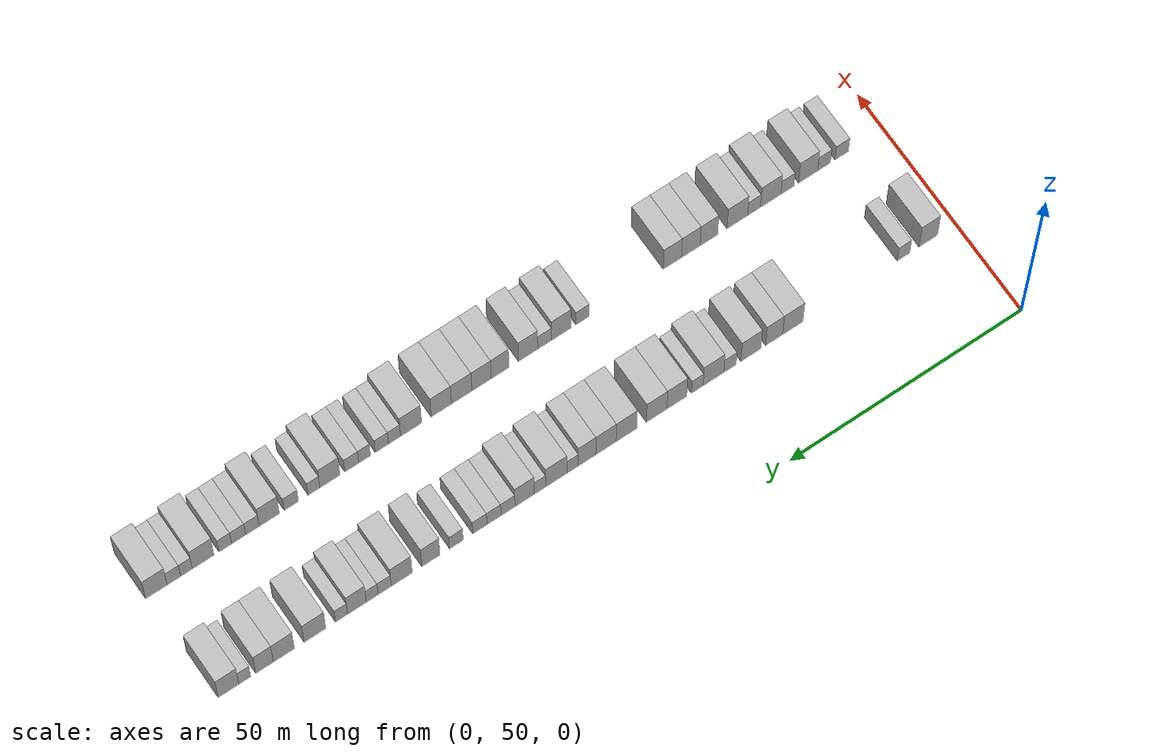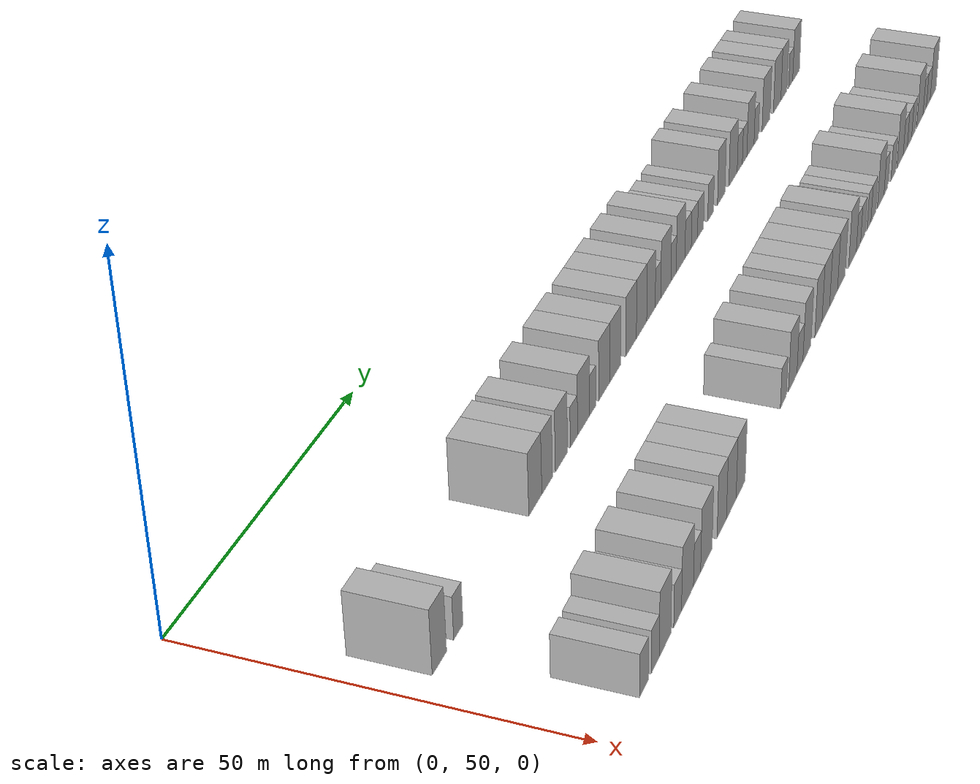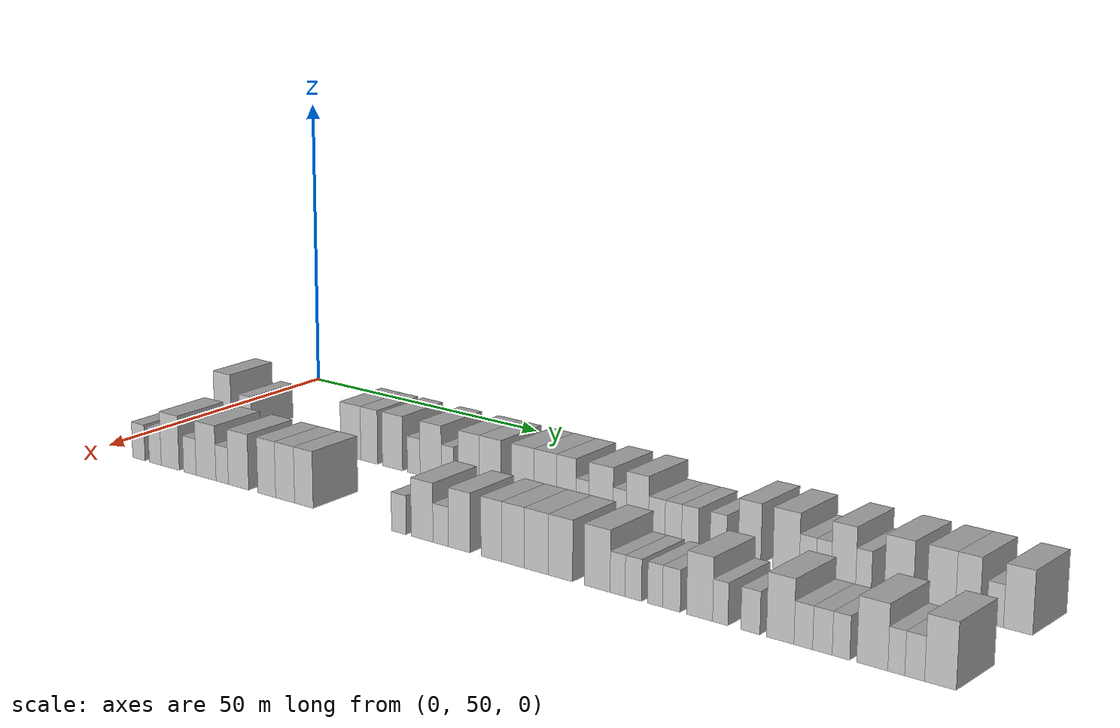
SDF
<sdf version="1.6">
 <world name="default">
  <model name="building_69">
   <static>1</static>
   <pose>25.0000 55.9958 0 0.000000 0.000000 0.000000</pose>
   <link name="link">
    <pose>0 0 4.50 0 0 0</pose>
    <collision name="collision"><geometry><box><size>10.0000 4.0363 9.0000</size></box></geometry></collision>
    <visual name="visual">
     <cast_shadows>0</cast_shadows>
     <geometry><box><size>10.0000 4.0363 9.0000</size></box></geometry>
     <material>
      <script>
       <uri>model://HANNAS_wall/materials/scripts</uri>
       <uri>model://HANNAS_wall/materials/textures</uri>
       <name>vrc/HANNAS_wall</name>
      </script>
     </material>
    </visual>
   </link>
  </model>
  <model name="building_70">
   <static>1</static>
   <pose>25.0000 61.3768 0 0.000000 0.000000 0.000000</pose>
   <link name="link">
    <pose>0 0 3.00 0 0 0</pose>
    <collision name="collision"><geometry><box><size>10.0000 2.7257 6.0000</size></box></geometry></collision>
    <visual name="visual">
     <cast_shadows>0</cast_shadows>
     <geometry><box><size>10.0000 2.7257 6.0000</size></box></geometry>
     <material>
      <script>
       <uri>model://HANNAS_wall/materials/scripts</uri>
       <uri>model://HANNAS_wall/materials/textures</uri>
       <name>vrc/HANNAS_wall</name>
      </script>
     </material>
    </visual>
   </link>
  </model>
  <model name="building_71">
   <static>1</static>
   <pose>25.0000 85.3291 0 0.000000 0.000000 0.000000</pose>
   <link name="link">
    <pose>0 0 4.50 0 0 0</pose>
    <collision name="collision"><geometry><box><size>10.0000 4.3930 9.0000</size></box></geometry></collision>
    <visual name="visual">
     <cast_shadows>0</cast_shadows>
     <geometry><box><size>10.0000 4.3930 9.0000</size></box></geometry>
     <material>
      <script>
       <uri>model://HANNAS_wall/materials/scripts</uri>
       <uri>model://HANNAS_wall/materials/textures</uri>
       <name>vrc/HANNAS_wall</name>
      </script>
     </material>
    </visual>
   </link>
  </model>
  <model name="building_72">
   <static>1</static>
   <pose>25.0000 89.3471 0 0.000000 0.000000 0.000000</pose>
   <link name="link">
    <pose>0 0 4.50 0 0 0</pose>
    <collision name="collision"><geometry><box><size>10.0000 3.6430 9.0000</size></box></geometry></collision>
    <visual name="visual">
     <cast_shadows>0</cast_shadows>
     <geometry><box><size>10.0000 3.6430 9.0000</size></box></geometry>
     <material>
      <script>
       <uri>model://HANNAS_wall/materials/scripts</uri>
       <uri>model://HANNAS_wall/materials/textures</uri>
       <name>vrc/HANNAS_wall</name>
      </script>
     </material>
    </visual>
   </link>
  </model>
  <model name="building_73">
   <static>1</static>
   <pose>25.0000 94.3187 0 0.000000 0.000000 0.000000</pose>
   <link name="link">
    <pose>0 0 4.50 0 0 0</pose>
    <collision name="collision"><geometry><box><size>10.0000 4.3004 9.0000</size></box></geometry></collision>
    <visual name="visual">
     <cast_shadows>0</cast_shadows>
     <geometry><box><size>10.0000 4.3004 9.0000</size></box></geometry>
     <material>
      <script>
       <uri>model://HANNAS_wall/materials/scripts</uri>
       <uri>model://HANNAS_wall/materials/textures</uri>
       <name>vrc/HANNAS_wall</name>
      </script>
     </material>
    </visual>
   </link>
  </model>
  <model name="building_74">
   <static>1</static>
   <pose>25.0000 98.8005 0 0.000000 0.000000 0.000000</pose>
   <link name="link">
    <pose>0 0 3.00 0 0 0</pose>
    <collision name="collision"><geometry><box><size>10.0000 2.6633 6.0000</size></box></geometry></collision>
    <visual name="visual">
     <cast_shadows>0</cast_shadows>
     <geometry><box><size>10.0000 2.6633 6.0000</size></box></geometry>
     <material>
      <script>
       <uri>model://HANNAS_wall/materials/scripts</uri>
       <uri>model://HANNAS_wall/materials/textures</uri>
       <name>vrc/HANNAS_wall</name>
      </script>
     </material>
    </visual>
   </link>
  </model>
  <model name="building_75">
   <static>1</static>
   <pose>25.0000 102.3414 0 0.000000 0.000000 0.000000</pose>
   <link name="link">
    <pose>0 0 4.50 0 0 0</pose>
    <collision name="collision"><geometry><box><size>10.0000 4.4184 9.0000</size></box></geometry></collision>
    <visual name="visual">
     <cast_shadows>0</cast_shadows>
     <geometry><box><size>10.0000 4.4184 9.0000</size></box></geometry>
     <material>
      <script>
       <uri>model://HANNAS_wall/materials/scripts</uri>
       <uri>model://HANNAS_wall/materials/textures</uri>
       <name>vrc/HANNAS_wall</name>
      </script>
     </material>
    </visual>
   </link>
  </model>
  <model name="building_76">
   <static>1</static>
   <pose>25.0000 105.7823 0 0.000000 0.000000 0.000000</pose>
   <link name="link">
    <pose>0 0 3.00 0 0 0</pose>
    <collision name="collision"><geometry><box><size>10.0000 2.4634 6.0000</size></box></geometry></collision>
    <visual name="visual">
     <cast_shadows>0</cast_shadows>
     <geometry><box><size>10.0000 2.4634 6.0000</size></box></geometry>
     <material>
      <script>
       <uri>model://HANNAS_wall/materials/scripts</uri>
       <uri>model://HANNAS_wall/materials/textures</uri>
       <name>vrc/HANNAS_wall</name>
      </script>
     </material>
    </visual>
   </link>
  </model>
  <model name="building_77">
   <static>1</static>
   <pose>25.0000 110.1283 0 0.000000 0.000000 0.000000</pose>
   <link name="link">
    <pose>0 0 4.50 0 0 0</pose>
    <collision name="collision"><geometry><box><size>10.0000 4.2287 9.0000</size></box></geometry></collision>
    <visual name="visual">
     <cast_shadows>0</cast_shadows>
     <geometry><box><size>10.0000 4.2287 9.0000</size></box></geometry>
     <material>
      <script>
       <uri>model://HANNAS_wall/materials/scripts</uri>
       <uri>model://HANNAS_wall/materials/textures</uri>
       <name>vrc/HANNAS_wall</name>
      </script>
     </material>
    </visual>
   </link>
  </model>
  <model name="building_78">
   <static>1</static>
   <pose>25.0000 114.4255 0 0.000000 0.000000 0.000000</pose>
   <link name="link">
    <pose>0 0 4.50 0 0 0</pose>
    <collision name="collision"><geometry><box><size>10.0000 4.3657 9.0000</size></box></geometry></collision>
    <visual name="visual">
     <cast_shadows>0</cast_shadows>
     <geometry><box><size>10.0000 4.3657 9.0000</size></box></geometry>
     <material>
      <script>
       <uri>model://HANNAS_wall/materials/scripts</uri>
       <uri>model://HANNAS_wall/materials/textures</uri>
       <name>vrc/HANNAS_wall</name>
      </script>
     </material>
    </visual>
   </link>
  </model>
  <model name="building_79">
   <static>1</static>
   <pose>25.0000 120.8069 0 0.000000 0.000000 0.000000</pose>
   <link name="link">
    <pose>0 0 4.50 0 0 0</pose>
    <collision name="collision"><geometry><box><size>10.0000 4.3971 9.0000</size></box></geometry></collision>
    <visual name="visual">
     <cast_shadows>0</cast_shadows>
     <geometry><box><size>10.0000 4.3971 9.0000</size></box></geometry>
     <material>
      <script>
       <uri>model://HANNAS_wall/materials/scripts</uri>
       <uri>model://HANNAS_wall/materials/textures</uri>
       <name>vrc/HANNAS_wall</name>
      </script>
     </material>
    </visual>
   </link>
  </model>
  <model name="building_80">
   <static>1</static>
   <pose>25.0000 125.1614 0 0.000000 0.000000 0.000000</pose>
   <link name="link">
    <pose>0 0 4.50 0 0 0</pose>
    <collision name="collision"><geometry><box><size>10.0000 4.3120 9.0000</size></box></geometry></collision>
    <visual name="visual">
     <cast_shadows>0</cast_shadows>
     <geometry><box><size>10.0000 4.3120 9.0000</size></box></geometry>
     <material>
      <script>
       <uri>model://HANNAS_wall/materials/scripts</uri>
       <uri>model://HANNAS_wall/materials/textures</uri>
       <name>vrc/HANNAS_wall</name>
      </script>
     </material>
    </visual>
   </link>
  </model>
  <model name="building_81">
   <static>1</static>
   <pose>25.0000 129.1524 0 0.000000 0.000000 0.000000</pose>
   <link name="link">
    <pose>0 0 4.50 0 0 0</pose>
    <collision name="collision"><geometry><box><size>10.0000 3.6699 9.0000</size></box></geometry></collision>
    <visual name="visual">
     <cast_shadows>0</cast_shadows>
     <geometry><box><size>10.0000 3.6699 9.0000</size></box></geometry>
     <material>
      <script>
       <uri>model://HANNAS_wall/materials/scripts</uri>
       <uri>model://HANNAS_wall/materials/textures</uri>
       <name>vrc/HANNAS_wall</name>
      </script>
     </material>
    </visual>
   </link>
  </model>
  <model name="building_82">
   <static>1</static>
   <pose>25.0000 132.1975 0 0.000000 0.000000 0.000000</pose>
   <link name="link">
    <pose>0 0 3.00 0 0 0</pose>
    <collision name="collision"><geometry><box><size>10.0000 2.4202 6.0000</size></box></geometry></collision>
    <visual name="visual">
     <cast_shadows>0</cast_shadows>
     <geometry><box><size>10.0000 2.4202 6.0000</size></box></geometry>
     <material>
      <script>
       <uri>model://HANNAS_wall/materials/scripts</uri>
       <uri>model://HANNAS_wall/materials/textures</uri>
       <name>vrc/HANNAS_wall</name>
      </script>
     </material>
    </visual>
   </link>
  </model>
  <model name="building_83">
   <static>1</static>
   <pose>25.0000 135.6443 0 0.000000 0.000000 0.000000</pose>
   <link name="link">
    <pose>0 0 4.50 0 0 0</pose>
    <collision name="collision"><geometry><box><size>10.0000 4.4733 9.0000</size></box></geometry></collision>
    <visual name="visual">
     <cast_shadows>0</cast_shadows>
     <geometry><box><size>10.0000 4.4733 9.0000</size></box></geometry>
     <material>
      <script>
       <uri>model://HANNAS_wall/materials/scripts</uri>
       <uri>model://HANNAS_wall/materials/textures</uri>
       <name>vrc/HANNAS_wall</name>
      </script>
     </material>
    </visual>
   </link>
  </model>
  <model name="building_84">
   <static>1</static>
   <pose>25.0000 139.0898 0 0.000000 0.000000 0.000000</pose>
   <link name="link">
    <pose>0 0 3.00 0 0 0</pose>
    <collision name="collision"><geometry><box><size>10.0000 2.4178 6.0000</size></box></geometry></collision>
    <visual name="visual">
     <cast_shadows>0</cast_shadows>
     <geometry><box><size>10.0000 2.4178 6.0000</size></box></geometry>
     <material>
      <script>
       <uri>model://HANNAS_wall/materials/scripts</uri>
       <uri>model://HANNAS_wall/materials/textures</uri>
       <name>vrc/HANNAS_wall</name>
      </script>
     </material>
    </visual>
   </link>
  </model>
  <model name="building_85">
   <static>1</static>
   <pose>25.0000 142.3028 0 0.000000 0.000000 0.000000</pose>
   <link name="link">
    <pose>0 0 4.50 0 0 0</pose>
    <collision name="collision"><geometry><box><size>10.0000 4.0082 9.0000</size></box></geometry></collision>
    <visual name="visual">
     <cast_shadows>0</cast_shadows>
     <geometry><box><size>10.0000 4.0082 9.0000</size></box></geometry>
     <material>
      <script>
       <uri>model://HANNAS_wall/materials/scripts</uri>
       <uri>model://HANNAS_wall/materials/textures</uri>
       <name>vrc/HANNAS_wall</name>
      </script>
     </material>
    </visual>
   </link>
  </model>
  <model name="building_86">
   <static>1</static>
   <pose>25.0000 145.7734 0 0.000000 0.000000 0.000000</pose>
   <link name="link">
    <pose>0 0 3.00 0 0 0</pose>
    <collision name="collision"><geometry><box><size>10.0000 2.9331 6.0000</size></box></geometry></collision>
    <visual name="visual">
     <cast_shadows>0</cast_shadows>
     <geometry><box><size>10.0000 2.9331 6.0000</size></box></geometry>
     <material>
      <script>
       <uri>model://HANNAS_wall/materials/scripts</uri>
       <uri>model://HANNAS_wall/materials/textures</uri>
       <name>vrc/HANNAS_wall</name>
      </script>
     </material>
    </visual>
   </link>
  </model>
  <model name="building_87">
   <static>1</static>
   <pose>25.0000 148.7163 0 0.000000 0.000000 0.000000</pose>
   <link name="link">
    <pose>0 0 3.00 0 0 0</pose>
    <collision name="collision"><geometry><box><size>10.0000 2.9528 6.0000</size></box></geometry></collision>
    <visual name="visual">
     <cast_shadows>0</cast_shadows>
     <geometry><box><size>10.0000 2.9528 6.0000</size></box></geometry>
     <material>
      <script>
       <uri>model://HANNAS_wall/materials/scripts</uri>
       <uri>model://HANNAS_wall/materials/textures</uri>
       <name>vrc/HANNAS_wall</name>
      </script>
     </material>
    </visual>
   </link>
  </model>
  <model name="building_88">
   <static>1</static>
   <pose>25.0000 151.6669 0 0.000000 0.000000 0.000000</pose>
   <link name="link">
    <pose>0 0 3.00 0 0 0</pose>
    <collision name="collision"><geometry><box><size>10.0000 2.9483 6.0000</size></box></geometry></collision>
    <visual name="visual">
     <cast_shadows>0</cast_shadows>
     <geometry><box><size>10.0000 2.9483 6.0000</size></box></geometry>
     <material>
      <script>
       <uri>model://HANNAS_wall/materials/scripts</uri>
       <uri>model://HANNAS_wall/materials/textures</uri>
       <name>vrc/HANNAS_wall</name>
      </script>
     </material>
    </visual>
   </link>
  </model>
  <model name="building_89">
   <static>1</static>
   <pose>25.0000 156.5562 0 0.000000 0.000000 0.000000</pose>
   <link name="link">
    <pose>0 0 3.00 0 0 0</pose>
    <collision name="collision"><geometry><box><size>10.0000 2.8304 6.0000</size></box></geometry></collision>
    <visual name="visual">
     <cast_shadows>0</cast_shadows>
     <geometry><box><size>10.0000 2.8304 6.0000</size></box></geometry>
     <material>
      <script>
       <uri>model://HANNAS_wall/materials/scripts</uri>
       <uri>model://HANNAS_wall/materials/textures</uri>
       <name>vrc/HANNAS_wall</name>
      </script>
     </material>
    </visual>
   </link>
  </model>
  <model name="building_90">
   <static>1</static>
   <pose>25.0000 161.8635 0 0.000000 0.000000 0.000000</pose>
   <link name="link">
    <pose>0 0 4.50 0 0 0</pose>
    <collision name="collision"><geometry><box><size>10.0000 3.7841 9.0000</size></box></geometry></collision>
    <visual name="visual">
     <cast_shadows>0</cast_shadows>
     <geometry><box><size>10.0000 3.7841 9.0000</size></box></geometry>
     <material>
      <script>
       <uri>model://HANNAS_wall/materials/scripts</uri>
       <uri>model://HANNAS_wall/materials/textures</uri>
       <name>vrc/HANNAS_wall</name>
      </script>
     </material>
    </visual>
   </link>
  </model>
  <model name="building_91">
   <static>1</static>
   <pose>25.0000 167.9259 0 0.000000 0.000000 0.000000</pose>
   <link name="link">
    <pose>0 0 4.50 0 0 0</pose>
    <collision name="collision"><geometry><box><size>10.0000 4.3407 9.0000</size></box></geometry></collision>
    <visual name="visual">
     <cast_shadows>0</cast_shadows>
     <geometry><box><size>10.0000 4.3407 9.0000</size></box></geometry>
     <material>
      <script>
       <uri>model://HANNAS_wall/materials/scripts</uri>
       <uri>model://HANNAS_wall/materials/textures</uri>
       <name>vrc/HANNAS_wall</name>
      </script>
     </material>
    </visual>
   </link>
  </model>
  <model name="building_92">
   <static>1</static>
   <pose>25.0000 171.4656 0 0.000000 0.000000 0.000000</pose>
   <link name="link">
    <pose>0 0 3.00 0 0 0</pose>
    <collision name="collision"><geometry><box><size>10.0000 2.7387 6.0000</size></box></geometry></collision>
    <visual name="visual">
     <cast_shadows>0</cast_shadows>
     <geometry><box><size>10.0000 2.7387 6.0000</size></box></geometry>
     <material>
      <script>
       <uri>model://HANNAS_wall/materials/scripts</uri>
       <uri>model://HANNAS_wall/materials/textures</uri>
       <name>vrc/HANNAS_wall</name>
      </script>
     </material>
    </visual>
   </link>
  </model>
  <model name="building_93">
   <static>1</static>
   <pose>25.0000 174.0482 0 0.000000 0.000000 0.000000</pose>
   <link name="link">
    <pose>0 0 3.00 0 0 0</pose>
    <collision name="collision"><geometry><box><size>10.0000 2.4267 6.0000</size></box></geometry></collision>
    <visual name="visual">
     <cast_shadows>0</cast_shadows>
     <geometry><box><size>10.0000 2.4267 6.0000</size></box></geometry>
     <material>
      <script>
       <uri>model://HANNAS_wall/materials/scripts</uri>
       <uri>model://HANNAS_wall/materials/textures</uri>
       <name>vrc/HANNAS_wall</name>
      </script>
     </material>
    </visual>
   </link>
  </model>
  <model name="building_94">
   <static>1</static>
   <pose>25.0000 177.2059 0 0.000000 0.000000 0.000000</pose>
   <link name="link">
    <pose>0 0 4.50 0 0 0</pose>
    <collision name="collision"><geometry><box><size>10.0000 3.8887 9.0000</size></box></geometry></collision>
    <visual name="visual">
     <cast_shadows>0</cast_shadows>
     <geometry><box><size>10.0000 3.8887 9.0000</size></box></geometry>
     <material>
      <script>
       <uri>model://HANNAS_wall/materials/scripts</uri>
       <uri>model://HANNAS_wall/materials/textures</uri>
       <name>vrc/HANNAS_wall</name>
      </script>
     </material>
    </visual>
   </link>
  </model>
  <model name="building_95">
   <static>1</static>
   <pose>25.0000 180.3838 0 0.000000 0.000000 0.000000</pose>
   <link name="link">
    <pose>0 0 3.00 0 0 0</pose>
    <collision name="collision"><geometry><box><size>10.0000 2.4671 6.0000</size></box></geometry></collision>
    <visual name="visual">
     <cast_shadows>0</cast_shadows>
     <geometry><box><size>10.0000 2.4671 6.0000</size></box></geometry>
     <material>
      <script>
       <uri>model://HANNAS_wall/materials/scripts</uri>
       <uri>model://HANNAS_wall/materials/textures</uri>
       <name>vrc/HANNAS_wall</name>
      </script>
     </material>
    </visual>
   </link>
  </model>
  <model name="building_96">
   <static>1</static>
   <pose>25.0000 185.8501 0 0.000000 0.000000 0.000000</pose>
   <link name="link">
    <pose>0 0 4.50 0 0 0</pose>
    <collision name="collision"><geometry><box><size>10.0000 4.4653 9.0000</size></box></geometry></collision>
    <visual name="visual">
     <cast_shadows>0</cast_shadows>
     <geometry><box><size>10.0000 4.4653 9.0000</size></box></geometry>
     <material>
      <script>
       <uri>model://HANNAS_wall/materials/scripts</uri>
       <uri>model://HANNAS_wall/materials/textures</uri>
       <name>vrc/HANNAS_wall</name>
      </script>
     </material>
    </visual>
   </link>
  </model>
  <model name="building_97">
   <static>1</static>
   <pose>25.0000 192.2545 0 0.000000 0.000000 0.000000</pose>
   <link name="link">
    <pose>0 0 4.50 0 0 0</pose>
    <collision name="collision"><geometry><box><size>10.0000 4.3436 9.0000</size></box></geometry></collision>
    <visual name="visual">
     <cast_shadows>0</cast_shadows>
     <geometry><box><size>10.0000 4.3436 9.0000</size></box></geometry>
     <material>
      <script>
       <uri>model://HANNAS_wall/materials/scripts</uri>
       <uri>model://HANNAS_wall/materials/textures</uri>
       <name>vrc/HANNAS_wall</name>
      </script>
     </material>
    </visual>
   </link>
  </model>
  <model name="building_98">
   <static>1</static>
   <pose>25.0000 196.2273 0 0.000000 0.000000 0.000000</pose>
   <link name="link">
    <pose>0 0 4.50 0 0 0</pose>
    <collision name="collision"><geometry><box><size>10.0000 3.6019 9.0000</size></box></geometry></collision>
    <visual name="visual">
     <cast_shadows>0</cast_shadows>
     <geometry><box><size>10.0000 3.6019 9.0000</size></box></geometry>
     <material>
      <script>
       <uri>model://HANNAS_wall/materials/scripts</uri>
       <uri>model://HANNAS_wall/materials/textures</uri>
       <name>vrc/HANNAS_wall</name>
      </script>
     </material>
    </visual>
   </link>
  </model>
  <model name="building_99">
   <static>1</static>
   <pose>25.0000 200.2565 0 0.000000 0.000000 0.000000</pose>
   <link name="link">
    <pose>0 0 3.00 0 0 0</pose>
    <collision name="collision"><geometry><box><size>10.0000 2.4564 6.0000</size></box></geometry></collision>
    <visual name="visual">
     <cast_shadows>0</cast_shadows>
     <geometry><box><size>10.0000 2.4564 6.0000</size></box></geometry>
     <material>
      <script>
       <uri>model://HANNAS_wall/materials/scripts</uri>
       <uri>model://HANNAS_wall/materials/textures</uri>
       <name>vrc/HANNAS_wall</name>
      </script>
     </material>
    </visual>
   </link>
  </model>
  <model name="building_100">
   <static>1</static>
   <pose>25.0000 203.5905 0 0.000000 0.000000 0.000000</pose>
   <link name="link">
    <pose>0 0 4.50 0 0 0</pose>
    <collision name="collision"><geometry><box><size>10.0000 4.2116 9.0000</size></box></geometry></collision>
    <visual name="visual">
     <cast_shadows>0</cast_shadows>
     <geometry><box><size>10.0000 4.2116 9.0000</size></box></geometry>
     <material>
      <script>
       <uri>model://HANNAS_wall/materials/scripts</uri>
       <uri>model://HANNAS_wall/materials/textures</uri>
       <name>vrc/HANNAS_wall</name>
      </script>
     </material>
    </visual>
   </link>
  </model>
  <model name="building_165">
   <static>1</static>
   <pose>47.0000 59.1930 0 0.000000 0.000000 0.000000</pose>
   <link name="link">
    <pose>0 0 3.00 0 0 0</pose>
    <collision name="collision"><geometry><box><size>10.0000 2.9124 6.0000</size></box></geometry></collision>
    <visual name="visual">
     <cast_shadows>0</cast_shadows>
     <geometry><box><size>10.0000 2.9124 6.0000</size></box></geometry>
     <material>
      <script>
       <uri>model://HANNAS_wall/materials/scripts</uri>
       <uri>model://HANNAS_wall/materials/textures</uri>
       <name>vrc/HANNAS_wall</name>
      </script>
     </material>
    </visual>
   </link>
  </model>
  <model name="building_166">
   <static>1</static>
   <pose>47.0000 63.0403 0 0.000000 0.000000 0.000000</pose>
   <link name="link">
    <pose>0 0 3.00 0 0 0</pose>
    <collision name="collision"><geometry><box><size>10.0000 2.7821 6.0000</size></box></geometry></collision>
    <visual name="visual">
     <cast_shadows>0</cast_shadows>
     <geometry><box><size>10.0000 2.7821 6.0000</size></box></geometry>
     <material>
      <script>
       <uri>model://HANNAS_wall/materials/scripts</uri>
       <uri>model://HANNAS_wall/materials/textures</uri>
       <name>vrc/HANNAS_wall</name>
      </script>
     </material>
    </visual>
   </link>
  </model>
  <model name="building_167">
   <static>1</static>
   <pose>47.0000 66.5102 0 0.000000 0.000000 0.000000</pose>
   <link name="link">
    <pose>0 0 4.50 0 0 0</pose>
    <collision name="collision"><geometry><box><size>10.0000 4.1576 9.0000</size></box></geometry></collision>
    <visual name="visual">
     <cast_shadows>0</cast_shadows>
     <geometry><box><size>10.0000 4.1576 9.0000</size></box></geometry>
     <material>
      <script>
       <uri>model://HANNAS_wall/materials/scripts</uri>
       <uri>model://HANNAS_wall/materials/textures</uri>
       <name>vrc/HANNAS_wall</name>
      </script>
     </material>
    </visual>
   </link>
  </model>
  <model name="building_168">
   <static>1</static>
   <pose>47.0000 71.0155 0 0.000000 0.000000 0.000000</pose>
   <link name="link">
    <pose>0 0 3.00 0 0 0</pose>
    <collision name="collision"><geometry><box><size>10.0000 2.8531 6.0000</size></box></geometry></collision>
    <visual name="visual">
     <cast_shadows>0</cast_shadows>
     <geometry><box><size>10.0000 2.8531 6.0000</size></box></geometry>
     <material>
      <script>
       <uri>model://HANNAS_wall/materials/scripts</uri>
       <uri>model://HANNAS_wall/materials/textures</uri>
       <name>vrc/HANNAS_wall</name>
      </script>
     </material>
    </visual>
   </link>
  </model>
  <model name="building_169">
   <static>1</static>
   <pose>47.0000 74.6723 0 0.000000 0.000000 0.000000</pose>
   <link name="link">
    <pose>0 0 4.50 0 0 0</pose>
    <collision name="collision"><geometry><box><size>10.0000 4.4606 9.0000</size></box></geometry></collision>
    <visual name="visual">
     <cast_shadows>0</cast_shadows>
     <geometry><box><size>10.0000 4.4606 9.0000</size></box></geometry>
     <material>
      <script>
       <uri>model://HANNAS_wall/materials/scripts</uri>
       <uri>model://HANNAS_wall/materials/textures</uri>
       <name>vrc/HANNAS_wall</name>
      </script>
     </material>
    </visual>
   </link>
  </model>
  <model name="building_170">
   <static>1</static>
   <pose>47.0000 78.2734 0 0.000000 0.000000 0.000000</pose>
   <link name="link">
    <pose>0 0 3.00 0 0 0</pose>
    <collision name="collision"><geometry><box><size>10.0000 2.7416 6.0000</size></box></geometry></collision>
    <visual name="visual">
     <cast_shadows>0</cast_shadows>
     <geometry><box><size>10.0000 2.7416 6.0000</size></box></geometry>
     <material>
      <script>
       <uri>model://HANNAS_wall/materials/scripts</uri>
       <uri>model://HANNAS_wall/materials/textures</uri>
       <name>vrc/HANNAS_wall</name>
      </script>
     </material>
    </visual>
   </link>
  </model>
  <model name="building_171">
   <static>1</static>
   <pose>47.0000 81.8725 0 0.000000 0.000000 0.000000</pose>
   <link name="link">
    <pose>0 0 4.50 0 0 0</pose>
    <collision name="collision"><geometry><box><size>10.0000 4.4566 9.0000</size></box></geometry></collision>
    <visual name="visual">
     <cast_shadows>0</cast_shadows>
     <geometry><box><size>10.0000 4.4566 9.0000</size></box></geometry>
     <material>
      <script>
       <uri>model://HANNAS_wall/materials/scripts</uri>
       <uri>model://HANNAS_wall/materials/textures</uri>
       <name>vrc/HANNAS_wall</name>
      </script>
     </material>
    </visual>
   </link>
  </model>
  <model name="building_172">
   <static>1</static>
   <pose>47.0000 88.0026 0 0.000000 0.000000 0.000000</pose>
   <link name="link">
    <pose>0 0 4.50 0 0 0</pose>
    <collision name="collision"><geometry><box><size>10.0000 3.8037 9.0000</size></box></geometry></collision>
    <visual name="visual">
     <cast_shadows>0</cast_shadows>
     <geometry><box><size>10.0000 3.8037 9.0000</size></box></geometry>
     <material>
      <script>
       <uri>model://HANNAS_wall/materials/scripts</uri>
       <uri>model://HANNAS_wall/materials/textures</uri>
       <name>vrc/HANNAS_wall</name>
      </script>
     </material>
    </visual>
   </link>
  </model>
  <model name="building_173">
   <static>1</static>
   <pose>47.0000 91.9175 0 0.000000 0.000000 0.000000</pose>
   <link name="link">
    <pose>0 0 4.50 0 0 0</pose>
    <collision name="collision"><geometry><box><size>10.0000 4.0261 9.0000</size></box></geometry></collision>
    <visual name="visual">
     <cast_shadows>0</cast_shadows>
     <geometry><box><size>10.0000 4.0261 9.0000</size></box></geometry>
     <material>
      <script>
       <uri>model://HANNAS_wall/materials/scripts</uri>
       <uri>model://HANNAS_wall/materials/textures</uri>
       <name>vrc/HANNAS_wall</name>
      </script>
     </material>
    </visual>
   </link>
  </model>
  <model name="building_174">
   <static>1</static>
   <pose>47.0000 95.8744 0 0.000000 0.000000 0.000000</pose>
   <link name="link">
    <pose>0 0 4.50 0 0 0</pose>
    <collision name="collision"><geometry><box><size>10.0000 3.8877 9.0000</size></box></geometry></collision>
    <visual name="visual">
     <cast_shadows>0</cast_shadows>
     <geometry><box><size>10.0000 3.8877 9.0000</size></box></geometry>
     <material>
      <script>
       <uri>model://HANNAS_wall/materials/scripts</uri>
       <uri>model://HANNAS_wall/materials/textures</uri>
       <name>vrc/HANNAS_wall</name>
      </script>
     </material>
    </visual>
   </link>
  </model>
  <model name="building_175">
   <static>1</static>
   <pose>47.0000 115.0787 0 0.000000 0.000000 0.000000</pose>
   <link name="link">
    <pose>0 0 3.00 0 0 0</pose>
    <collision name="collision"><geometry><box><size>10.0000 2.8403 6.0000</size></box></geometry></collision>
    <visual name="visual">
     <cast_shadows>0</cast_shadows>
     <geometry><box><size>10.0000 2.8403 6.0000</size></box></geometry>
     <material>
      <script>
       <uri>model://HANNAS_wall/materials/scripts</uri>
       <uri>model://HANNAS_wall/materials/textures</uri>
       <name>vrc/HANNAS_wall</name>
      </script>
     </material>
    </visual>
   </link>
  </model>
  <model name="building_176">
   <static>1</static>
   <pose>47.0000 119.5922 0 0.000000 0.000000 0.000000</pose>
   <link name="link">
    <pose>0 0 4.50 0 0 0</pose>
    <collision name="collision"><geometry><box><size>10.0000 4.1866 9.0000</size></box></geometry></collision>
    <visual name="visual">
     <cast_shadows>0</cast_shadows>
     <geometry><box><size>10.0000 4.1866 9.0000</size></box></geometry>
     <material>
      <script>
       <uri>model://HANNAS_wall/materials/scripts</uri>
       <uri>model://HANNAS_wall/materials/textures</uri>
       <name>vrc/HANNAS_wall</name>
      </script>
     </material>
    </visual>
   </link>
  </model>
  <model name="building_177">
   <static>1</static>
   <pose>47.0000 123.1484 0 0.000000 0.000000 0.000000</pose>
   <link name="link">
    <pose>0 0 3.00 0 0 0</pose>
    <collision name="collision"><geometry><box><size>10.0000 2.9258 6.0000</size></box></geometry></collision>
    <visual name="visual">
     <cast_shadows>0</cast_shadows>
     <geometry><box><size>10.0000 2.9258 6.0000</size></box></geometry>
     <material>
      <script>
       <uri>model://HANNAS_wall/materials/scripts</uri>
       <uri>model://HANNAS_wall/materials/textures</uri>
       <name>vrc/HANNAS_wall</name>
      </script>
     </material>
    </visual>
   </link>
  </model>
  <model name="building_178">
   <static>1</static>
   <pose>47.0000 126.6544 0 0.000000 0.000000 0.000000</pose>
   <link name="link">
    <pose>0 0 4.50 0 0 0</pose>
    <collision name="collision"><geometry><box><size>10.0000 4.0863 9.0000</size></box></geometry></collision>
    <visual name="visual">
     <cast_shadows>0</cast_shadows>
     <geometry><box><size>10.0000 4.0863 9.0000</size></box></geometry>
     <material>
      <script>
       <uri>model://HANNAS_wall/materials/scripts</uri>
       <uri>model://HANNAS_wall/materials/textures</uri>
       <name>vrc/HANNAS_wall</name>
      </script>
     </material>
    </visual>
   </link>
  </model>
  <model name="building_179">
   <static>1</static>
   <pose>47.0000 132.5828 0 0.000000 0.000000 0.000000</pose>
   <link name="link">
    <pose>0 0 4.50 0 0 0</pose>
    <collision name="collision"><geometry><box><size>10.0000 3.7704 9.0000</size></box></geometry></collision>
    <visual name="visual">
     <cast_shadows>0</cast_shadows>
     <geometry><box><size>10.0000 3.7704 9.0000</size></box></geometry>
     <material>
      <script>
       <uri>model://HANNAS_wall/materials/scripts</uri>
       <uri>model://HANNAS_wall/materials/textures</uri>
       <name>vrc/HANNAS_wall</name>
      </script>
     </material>
    </visual>
   </link>
  </model>
  <model name="building_180">
   <static>1</static>
   <pose>47.0000 136.5095 0 0.000000 0.000000 0.000000</pose>
   <link name="link">
    <pose>0 0 4.50 0 0 0</pose>
    <collision name="collision"><geometry><box><size>10.0000 4.0828 9.0000</size></box></geometry></collision>
    <visual name="visual">
     <cast_shadows>0</cast_shadows>
     <geometry><box><size>10.0000 4.0828 9.0000</size></box></geometry>
     <material>
      <script>
       <uri>model://HANNAS_wall/materials/scripts</uri>
       <uri>model://HANNAS_wall/materials/textures</uri>
       <name>vrc/HANNAS_wall</name>
      </script>
     </material>
    </visual>
   </link>
  </model>
  <model name="building_181">
   <static>1</static>
   <pose>47.0000 140.7055 0 0.000000 0.000000 0.000000</pose>
   <link name="link">
    <pose>0 0 4.50 0 0 0</pose>
    <collision name="collision"><geometry><box><size>10.0000 4.3093 9.0000</size></box></geometry></collision>
    <visual name="visual">
     <cast_shadows>0</cast_shadows>
     <geometry><box><size>10.0000 4.3093 9.0000</size></box></geometry>
     <material>
      <script>
       <uri>model://HANNAS_wall/materials/scripts</uri>
       <uri>model://HANNAS_wall/materials/textures</uri>
       <name>vrc/HANNAS_wall</name>
      </script>
     </material>
    </visual>
   </link>
  </model>
  <model name="building_182">
   <static>1</static>
   <pose>47.0000 144.9863 0 0.000000 0.000000 0.000000</pose>
   <link name="link">
    <pose>0 0 4.50 0 0 0</pose>
    <collision name="collision"><geometry><box><size>10.0000 4.2523 9.0000</size></box></geometry></collision>
    <visual name="visual">
     <cast_shadows>0</cast_shadows>
     <geometry><box><size>10.0000 4.2523 9.0000</size></box></geometry>
     <material>
      <script>
       <uri>model://HANNAS_wall/materials/scripts</uri>
       <uri>model://HANNAS_wall/materials/textures</uri>
       <name>vrc/HANNAS_wall</name>
      </script>
     </material>
    </visual>
   </link>
  </model>
  <model name="building_183">
   <static>1</static>
   <pose>47.0000 151.3306 0 0.000000 0.000000 0.000000</pose>
   <link name="link">
    <pose>0 0 4.50 0 0 0</pose>
    <collision name="collision"><geometry><box><size>10.0000 4.4363 9.0000</size></box></geometry></collision>
    <visual name="visual">
     <cast_shadows>0</cast_shadows>
     <geometry><box><size>10.0000 4.4363 9.0000</size></box></geometry>
     <material>
      <script>
       <uri>model://HANNAS_wall/materials/scripts</uri>
       <uri>model://HANNAS_wall/materials/textures</uri>
       <name>vrc/HANNAS_wall</name>
      </script>
     </material>
    </visual>
   </link>
  </model>
  <model name="building_184">
   <static>1</static>
   <pose>47.0000 154.8137 0 0.000000 0.000000 0.000000</pose>
   <link name="link">
    <pose>0 0 3.00 0 0 0</pose>
    <collision name="collision"><geometry><box><size>10.0000 2.5299 6.0000</size></box></geometry></collision>
    <visual name="visual">
     <cast_shadows>0</cast_shadows>
     <geometry><box><size>10.0000 2.5299 6.0000</size></box></geometry>
     <material>
      <script>
       <uri>model://HANNAS_wall/materials/scripts</uri>
       <uri>model://HANNAS_wall/materials/textures</uri>
       <name>vrc/HANNAS_wall</name>
      </script>
     </material>
    </visual>
   </link>
  </model>
  <model name="building_185">
   <static>1</static>
   <pose>47.0000 157.4552 0 0.000000 0.000000 0.000000</pose>
   <link name="link">
    <pose>0 0 3.00 0 0 0</pose>
    <collision name="collision"><geometry><box><size>10.0000 2.7531 6.0000</size></box></geometry></collision>
    <visual name="visual">
     <cast_shadows>0</cast_shadows>
     <geometry><box><size>10.0000 2.7531 6.0000</size></box></geometry>
     <material>
      <script>
       <uri>model://HANNAS_wall/materials/scripts</uri>
       <uri>model://HANNAS_wall/materials/textures</uri>
       <name>vrc/HANNAS_wall</name>
      </script>
     </material>
    </visual>
   </link>
  </model>
  <model name="building_186">
   <static>1</static>
   <pose>47.0000 161.0598 0 0.000000 0.000000 0.000000</pose>
   <link name="link">
    <pose>0 0 3.00 0 0 0</pose>
    <collision name="collision"><geometry><box><size>10.0000 2.4561 6.0000</size></box></geometry></collision>
    <visual name="visual">
     <cast_shadows>0</cast_shadows>
     <geometry><box><size>10.0000 2.4561 6.0000</size></box></geometry>
     <material>
      <script>
       <uri>model://HANNAS_wall/materials/scripts</uri>
       <uri>model://HANNAS_wall/materials/textures</uri>
       <name>vrc/HANNAS_wall</name>
      </script>
     </material>
    </visual>
   </link>
  </model>
  <model name="building_187">
   <static>1</static>
   <pose>47.0000 163.7449 0 0.000000 0.000000 0.000000</pose>
   <link name="link">
    <pose>0 0 3.00 0 0 0</pose>
    <collision name="collision"><geometry><box><size>10.0000 2.9141 6.0000</size></box></geometry></collision>
    <visual name="visual">
     <cast_shadows>0</cast_shadows>
     <geometry><box><size>10.0000 2.9141 6.0000</size></box></geometry>
     <material>
      <script>
       <uri>model://HANNAS_wall/materials/scripts</uri>
       <uri>model://HANNAS_wall/materials/textures</uri>
       <name>vrc/HANNAS_wall</name>
      </script>
     </material>
    </visual>
   </link>
  </model>
  <model name="building_188">
   <static>1</static>
   <pose>47.0000 168.2943 0 0.000000 0.000000 0.000000</pose>
   <link name="link">
    <pose>0 0 4.50 0 0 0</pose>
    <collision name="collision"><geometry><box><size>10.0000 4.1848 9.0000</size></box></geometry></collision>
    <visual name="visual">
     <cast_shadows>0</cast_shadows>
     <geometry><box><size>10.0000 4.1848 9.0000</size></box></geometry>
     <material>
      <script>
       <uri>model://HANNAS_wall/materials/scripts</uri>
       <uri>model://HANNAS_wall/materials/textures</uri>
       <name>vrc/HANNAS_wall</name>
      </script>
     </material>
    </visual>
   </link>
  </model>
  <model name="building_189">
   <static>1</static>
   <pose>47.0000 171.6036 0 0.000000 0.000000 0.000000</pose>
   <link name="link">
    <pose>0 0 3.00 0 0 0</pose>
    <collision name="collision"><geometry><box><size>10.0000 2.4338 6.0000</size></box></geometry></collision>
    <visual name="visual">
     <cast_shadows>0</cast_shadows>
     <geometry><box><size>10.0000 2.4338 6.0000</size></box></geometry>
     <material>
      <script>
       <uri>model://HANNAS_wall/materials/scripts</uri>
       <uri>model://HANNAS_wall/materials/textures</uri>
       <name>vrc/HANNAS_wall</name>
      </script>
     </material>
    </visual>
   </link>
  </model>
  <model name="building_190">
   <static>1</static>
   <pose>47.0000 176.3093 0 0.000000 0.000000 0.000000</pose>
   <link name="link">
    <pose>0 0 3.00 0 0 0</pose>
    <collision name="collision"><geometry><box><size>10.0000 2.9776 6.0000</size></box></geometry></collision>
    <visual name="visual">
     <cast_shadows>0</cast_shadows>
     <geometry><box><size>10.0000 2.9776 6.0000</size></box></geometry>
     <material>
      <script>
       <uri>model://HANNAS_wall/materials/scripts</uri>
       <uri>model://HANNAS_wall/materials/textures</uri>
       <name>vrc/HANNAS_wall</name>
      </script>
     </material>
    </visual>
   </link>
  </model>
  <model name="building_191">
   <static>1</static>
   <pose>47.0000 180.8910 0 0.000000 0.000000 0.000000</pose>
   <link name="link">
    <pose>0 0 4.50 0 0 0</pose>
    <collision name="collision"><geometry><box><size>10.0000 4.1858 9.0000</size></box></geometry></collision>
    <visual name="visual">
     <cast_shadows>0</cast_shadows>
     <geometry><box><size>10.0000 4.1858 9.0000</size></box></geometry>
     <material>
      <script>
       <uri>model://HANNAS_wall/materials/scripts</uri>
       <uri>model://HANNAS_wall/materials/textures</uri>
       <name>vrc/HANNAS_wall</name>
      </script>
     </material>
    </visual>
   </link>
  </model>
  <model name="building_192">
   <static>1</static>
   <pose>47.0000 184.3866 0 0.000000 0.000000 0.000000</pose>
   <link name="link">
    <pose>0 0 3.00 0 0 0</pose>
    <collision name="collision"><geometry><box><size>10.0000 2.8053 6.0000</size></box></geometry></collision>
    <visual name="visual">
     <cast_shadows>0</cast_shadows>
     <geometry><box><size>10.0000 2.8053 6.0000</size></box></geometry>
     <material>
      <script>
       <uri>model://HANNAS_wall/materials/scripts</uri>
       <uri>model://HANNAS_wall/materials/textures</uri>
       <name>vrc/HANNAS_wall</name>
      </script>
     </material>
    </visual>
   </link>
  </model>
  <model name="building_193">
   <static>1</static>
   <pose>47.0000 187.2413 0 0.000000 0.000000 0.000000</pose>
   <link name="link">
    <pose>0 0 3.00 0 0 0</pose>
    <collision name="collision"><geometry><box><size>10.0000 2.9040 6.0000</size></box></geometry></collision>
    <visual name="visual">
     <cast_shadows>0</cast_shadows>
     <geometry><box><size>10.0000 2.9040 6.0000</size></box></geometry>
     <material>
      <script>
       <uri>model://HANNAS_wall/materials/scripts</uri>
       <uri>model://HANNAS_wall/materials/textures</uri>
       <name>vrc/HANNAS_wall</name>
      </script>
     </material>
    </visual>
   </link>
  </model>
  <model name="building_194">
   <static>1</static>
   <pose>47.0000 189.9912 0 0.000000 0.000000 0.000000</pose>
   <link name="link">
    <pose>0 0 3.00 0 0 0</pose>
    <collision name="collision"><geometry><box><size>10.0000 2.5958 6.0000</size></box></geometry></collision>
    <visual name="visual">
     <cast_shadows>0</cast_shadows>
     <geometry><box><size>10.0000 2.5958 6.0000</size></box></geometry>
     <material>
      <script>
       <uri>model://HANNAS_wall/materials/scripts</uri>
       <uri>model://HANNAS_wall/materials/textures</uri>
       <name>vrc/HANNAS_wall</name>
      </script>
     </material>
    </visual>
   </link>
  </model>
  <model name="building_195">
   <static>1</static>
   <pose>47.0000 194.5288 0 0.000000 0.000000 0.000000</pose>
   <link name="link">
    <pose>0 0 4.50 0 0 0</pose>
    <collision name="collision"><geometry><box><size>10.0000 4.4794 9.0000</size></box></geometry></collision>
    <visual name="visual">
     <cast_shadows>0</cast_shadows>
     <geometry><box><size>10.0000 4.4794 9.0000</size></box></geometry>
     <material>
      <script>
       <uri>model://HANNAS_wall/materials/scripts</uri>
       <uri>model://HANNAS_wall/materials/textures</uri>
       <name>vrc/HANNAS_wall</name>
      </script>
     </material>
    </visual>
   </link>
  </model>
  <model name="building_196">
   <static>1</static>
   <pose>47.0000 197.9688 0 0.000000 0.000000 0.000000</pose>
   <link name="link">
    <pose>0 0 3.00 0 0 0</pose>
    <collision name="collision"><geometry><box><size>10.0000 2.4005 6.0000</size></box></geometry></collision>
    <visual name="visual">
     <cast_shadows>0</cast_shadows>
     <geometry><box><size>10.0000 2.4005 6.0000</size></box></geometry>
     <material>
      <script>
       <uri>model://HANNAS_wall/materials/scripts</uri>
       <uri>model://HANNAS_wall/materials/textures</uri>
       <name>vrc/HANNAS_wall</name>
      </script>
     </material>
    </visual>
   </link>
  </model>
  <model name="building_197">
   <static>1</static>
   <pose>47.0000 200.5644 0 0.000000 0.000000 0.000000</pose>
   <link name="link">
    <pose>0 0 3.00 0 0 0</pose>
    <collision name="collision"><geometry><box><size>10.0000 2.7906 6.0000</size></box></geometry></collision>
    <visual name="visual">
     <cast_shadows>0</cast_shadows>
     <geometry><box><size>10.0000 2.7906 6.0000</size></box></geometry>
     <material>
      <script>
       <uri>model://HANNAS_wall/materials/scripts</uri>
       <uri>model://HANNAS_wall/materials/textures</uri>
       <name>vrc/HANNAS_wall</name>
      </script>
     </material>
    </visual>
   </link>
  </model>
  <model name="building_198">
   <static>1</static>
   <pose>47.0000 204.1648 0 0.000000 0.000000 0.000000</pose>
   <link name="link">
    <pose>0 0 4.50 0 0 0</pose>
    <collision name="collision"><geometry><box><size>10.0000 4.4102 9.0000</size></box></geometry></collision>
    <visual name="visual">
     <cast_shadows>0</cast_shadows>
     <geometry><box><size>10.0000 4.4102 9.0000</size></box></geometry>
     <material>
      <script>
       <uri>model://HANNAS_wall/materials/scripts</uri>
       <uri>model://HANNAS_wall/materials/textures</uri>
       <name>vrc/HANNAS_wall</name>
      </script>
     </material>
    </visual>
   </link>
  </model>
 </world>
</sdf>
